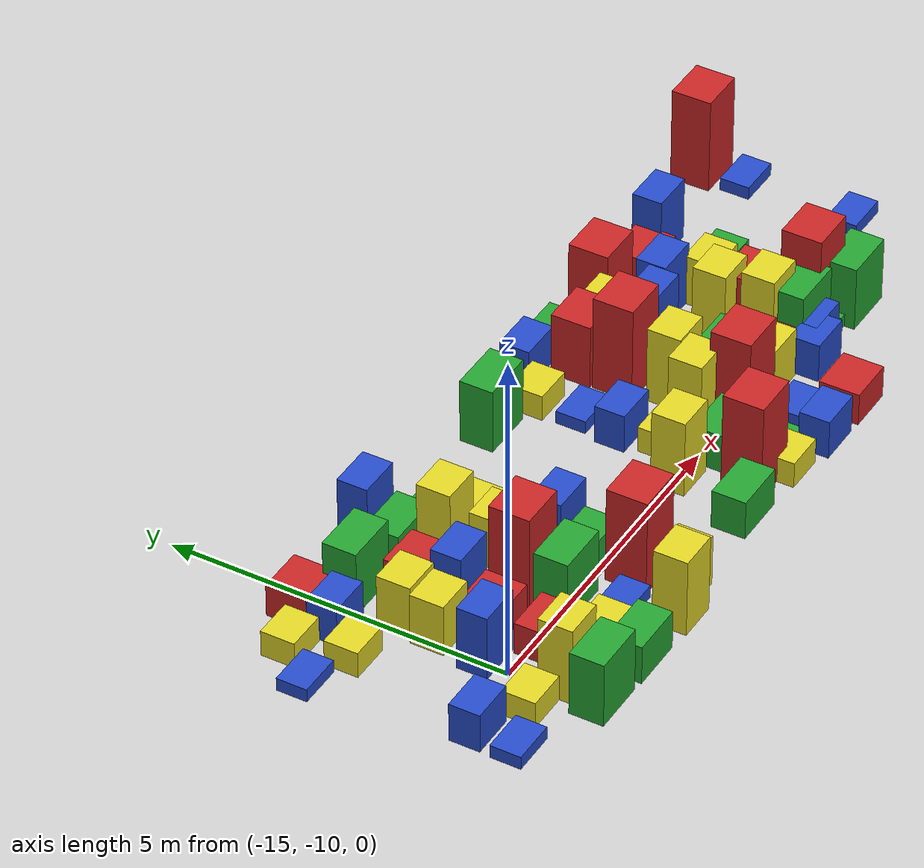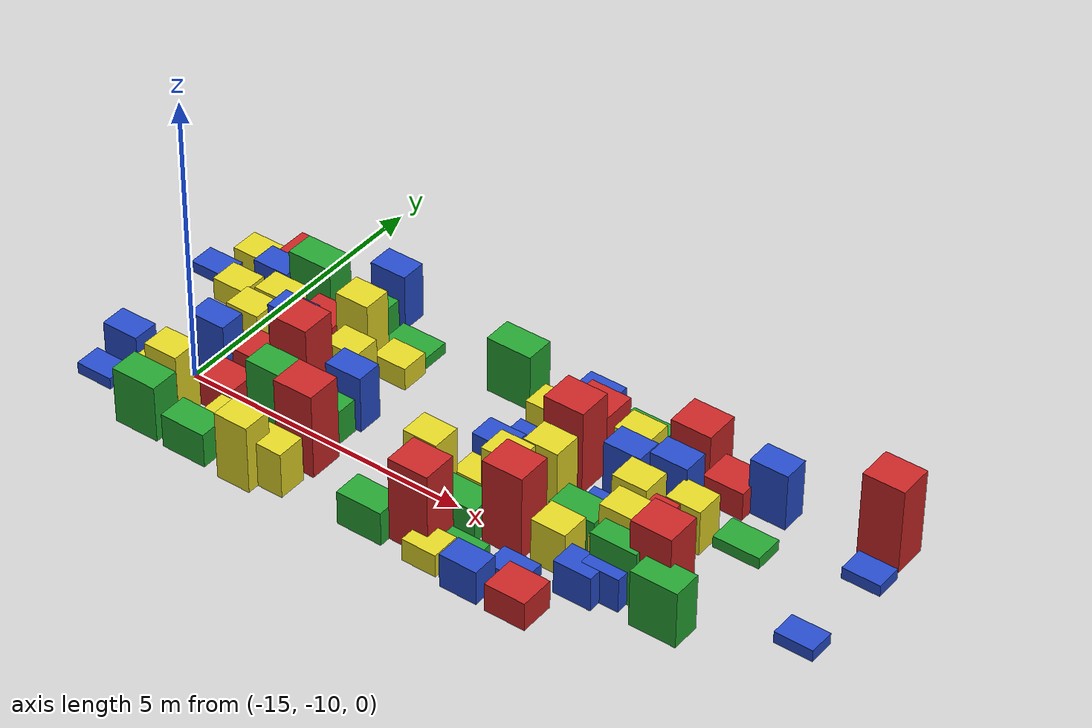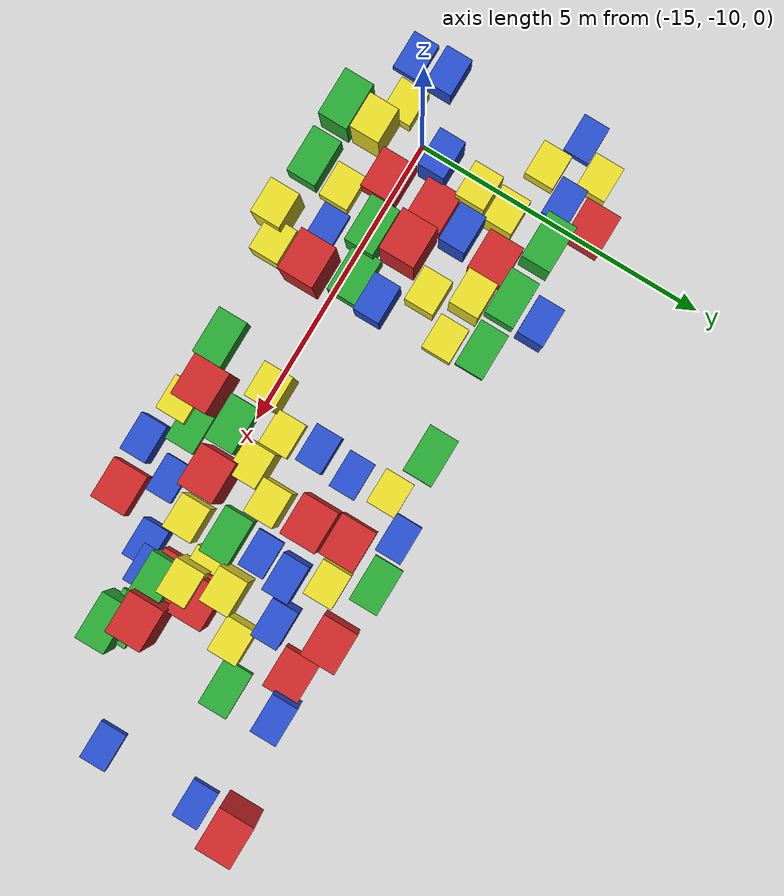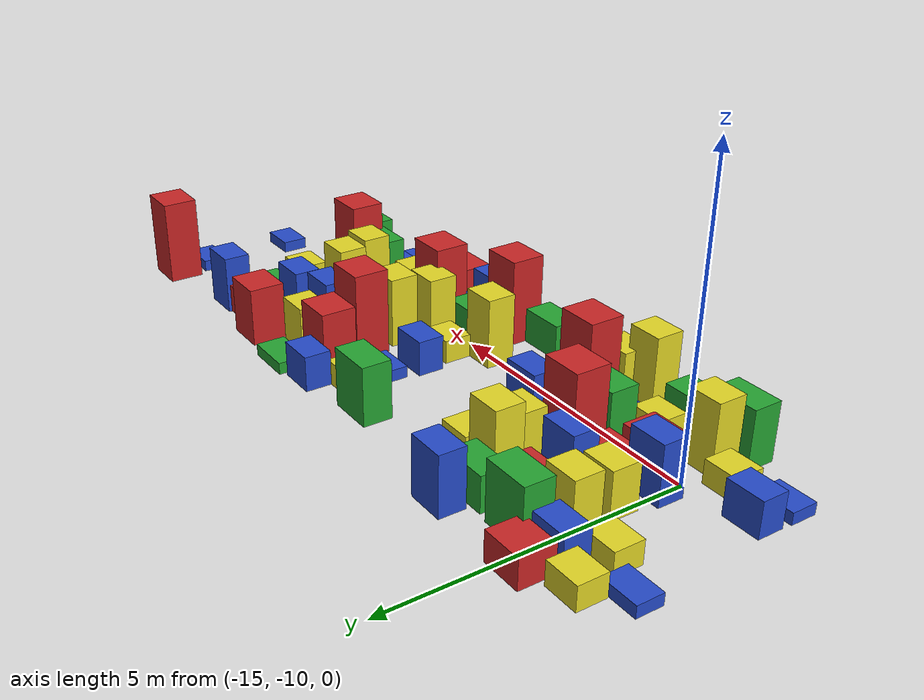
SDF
<sdf version="1.6">
 <world name="default">
  <model name="baggage_A_0.5_clone_0">
   <pose>-8.03594 -11.2169 0.25049 0 -0 0</pose>
   <static>1</static>
   <link name="baggage_A_0.5::link">
    <collision name="collision"><geometry><box><size>0.7 0.6 0.5</size></box></geometry></collision>
    <visual name="visual">
     <geometry><box><size>0.7 0.6 0.5</size></box></geometry>
     <material>
      <script><uri>file://media/materials/scripts/gazebo.material</uri><name>Gazebo/Red</name></script>
     </material>
    </visual>
   </link>
  </model>
  <model name="baggage_A_0.5_clone_1">
   <pose>-14.2316 -9.33114 0.25012 0 -0 0</pose>
   <static>1</static>
   <link name="baggage_A_0.5::link">
    <collision name="collision"><geometry><box><size>0.7 0.6 0.5</size></box></geometry></collision>
    <visual name="visual">
     <geometry><box><size>0.7 0.6 0.5</size></box></geometry>
     <material>
      <script><uri>file://media/materials/scripts/gazebo.material</uri><name>Gazebo/Red</name></script>
     </material>
    </visual>
   </link>
  </model>
  <model name="baggage_A_0.5_clone_2">
   <pose>-15.2039 -7.06577 0.250351 0 -0 0</pose>
   <static>1</static>
   <link name="baggage_A_0.5::link">
    <collision name="collision"><geometry><box><size>0.7 0.6 0.5</size></box></geometry></collision>
    <visual name="visual">
     <geometry><box><size>0.7 0.6 0.5</size></box></geometry>
     <material>
      <script><uri>file://media/materials/scripts/gazebo.material</uri><name>Gazebo/Red</name></script>
     </material>
    </visual>
   </link>
  </model>
  <model name="baggage_A_0.5_clone_3">
   <pose>-14.2574 -10.1602 0.249714 0 -0 0</pose>
   <static>1</static>
   <link name="baggage_A_0.5::link">
    <collision name="collision"><geometry><box><size>0.7 0.6 0.5</size></box></geometry></collision>
    <visual name="visual">
     <geometry><box><size>0.7 0.6 0.5</size></box></geometry>
     <material>
      <script><uri>file://media/materials/scripts/gazebo.material</uri><name>Gazebo/Red</name></script>
     </material>
    </visual>
   </link>
  </model>
  <model name="baggage_A_0.5_clone_4">
   <pose>-6.92975 -7.46539 0.249929 0 -0 0</pose>
   <static>1</static>
   <link name="baggage_A_0.5::link">
    <collision name="collision"><geometry><box><size>0.7 0.6 0.5</size></box></geometry></collision>
    <visual name="visual">
     <geometry><box><size>0.7 0.6 0.5</size></box></geometry>
     <material>
      <script><uri>file://media/materials/scripts/gazebo.material</uri><name>Gazebo/Red</name></script>
     </material>
    </visual>
   </link>
  </model>
  <model name="baggage_A_0.5_clone_8">
   <pose>-14.0214 -8.09758 0.249739 0 -0 0</pose>
   <static>1</static>
   <link name="baggage_A_0.5::link">
    <collision name="collision"><geometry><box><size>0.7 0.6 0.5</size></box></geometry></collision>
    <visual name="visual">
     <geometry><box><size>0.7 0.6 0.5</size></box></geometry>
     <material>
      <script><uri>file://media/materials/scripts/gazebo.material</uri><name>Gazebo/Red</name></script>
     </material>
    </visual>
   </link>
  </model>
  <model name="baggage_A_0.5_clone_14">
   <pose>-7.25875 -9.4415 0.249945 0 -0 0</pose>
   <static>1</static>
   <link name="baggage_A_0.5::link">
    <collision name="collision"><geometry><box><size>0.7 0.6 0.5</size></box></geometry></collision>
    <visual name="visual">
     <geometry><box><size>0.7 0.6 0.5</size></box></geometry>
     <material>
      <script><uri>file://media/materials/scripts/gazebo.material</uri><name>Gazebo/Red</name></script>
     </material>
    </visual>
   </link>
  </model>
  <model name="baggage_A_0.5_clone_18">
   <pose>-7.2545 -9.83119 0.249666 0 -0 0</pose>
   <static>1</static>
   <link name="baggage_A_0.5::link">
    <collision name="collision"><geometry><box><size>0.7 0.6 0.5</size></box></geometry></collision>
    <visual name="visual">
     <geometry><box><size>0.7 0.6 0.5</size></box></geometry>
     <material>
      <script><uri>file://media/materials/scripts/gazebo.material</uri><name>Gazebo/Red</name></script>
     </material>
    </visual>
   </link>
  </model>
  <model name="baggage_A_1.0_clone_2">
   <pose>-9.12711 -7.76509 0.499893 0 -0 0</pose>
   <static>1</static>
   <link name="baggage_A_1.0::link">
    <collision name="collision"><geometry><box><size>0.7 0.6 1</size></box></geometry></collision>
    <visual name="visual">
     <geometry><box><size>0.7 0.6 1</size></box></geometry>
     <material>
      <script><uri>file://media/materials/scripts/gazebo.material</uri><name>Gazebo/Red</name></script>
     </material>
    </visual>
   </link>
  </model>
  <model name="baggage_A_1.0_clone_13">
   <pose>-7.19822 -9.26942 0.499913 0 -0 0</pose>
   <static>1</static>
   <link name="baggage_A_1.0::link">
    <collision name="collision"><geometry><box><size>0.7 0.6 1</size></box></geometry></collision>
    <visual name="visual">
     <geometry><box><size>0.7 0.6 1</size></box></geometry>
     <material>
      <script><uri>file://media/materials/scripts/gazebo.material</uri><name>Gazebo/Red</name></script>
     </material>
    </visual>
   </link>
  </model>
  <model name="baggage_A_1.0_clone_19">
   <pose>-7.68545 -7.21501 0.50038 0 -0 0</pose>
   <static>1</static>
   <link name="baggage_A_1.0::link">
    <collision name="collision"><geometry><box><size>0.7 0.6 1</size></box></geometry></collision>
    <visual name="visual">
     <geometry><box><size>0.7 0.6 1</size></box></geometry>
     <material>
      <script><uri>file://media/materials/scripts/gazebo.material</uri><name>Gazebo/Red</name></script>
     </material>
    </visual>
   </link>
  </model>
  <model name="baggage_A_1.5_clone_0">
   <pose>-10.0364 -10.8358 0.750316 0 -0 0</pose>
   <static>1</static>
   <link name="baggage_A_1.5::link">
    <collision name="collision"><geometry><box><size>0.7 0.6 1.5</size></box></geometry></collision>
    <visual name="visual">
     <geometry><box><size>0.7 0.6 1.5</size></box></geometry>
     <material>
      <script><uri>file://media/materials/scripts/gazebo.material</uri><name>Gazebo/Red</name></script>
     </material>
    </visual>
   </link>
  </model>
  <model name="baggage_A_1.5_clone_1">
   <pose>-9.10882 -8.39068 0.74973 0 -0 0</pose>
   <static>1</static>
   <link name="baggage_A_1.5::link">
    <collision name="collision"><geometry><box><size>0.7 0.6 1.5</size></box></geometry></collision>
    <visual name="visual">
     <geometry><box><size>0.7 0.6 1.5</size></box></geometry>
     <material>
      <script><uri>file://media/materials/scripts/gazebo.material</uri><name>Gazebo/Red</name></script>
     </material>
    </visual>
   </link>
  </model>
  <model name="baggage_A_1.5_clone_5">
   <pose>-8.95148 -10.0626 0.75034 0 -0 0</pose>
   <static>1</static>
   <link name="baggage_A_1.5::link">
    <collision name="collision"><geometry><box><size>0.7 0.6 1.5</size></box></geometry></collision>
    <visual name="visual">
     <geometry><box><size>0.7 0.6 1.5</size></box></geometry>
     <material>
      <script><uri>file://media/materials/scripts/gazebo.material</uri><name>Gazebo/Red</name></script>
     </material>
    </visual>
   </link>
  </model>
  <model name="baggage_A_1.5_clone_6">
   <pose>-4.53239 -7.0569 0.749911 0 -0 0</pose>
   <static>1</static>
   <link name="baggage_A_1.5::link">
    <collision name="collision"><geometry><box><size>0.7 0.6 1.5</size></box></geometry></collision>
    <visual name="visual">
     <geometry><box><size>0.7 0.6 1.5</size></box></geometry>
     <material>
      <script><uri>file://media/materials/scripts/gazebo.material</uri><name>Gazebo/Red</name></script>
     </material>
    </visual>
   </link>
  </model>
  <model name="baggage_A_1.5_clone_10">
   <pose>-6.54813 -9.8382 0.750412 0 -0 0</pose>
   <static>1</static>
   <link name="baggage_A_1.5::link">
    <collision name="collision"><geometry><box><size>0.7 0.6 1.5</size></box></geometry></collision>
    <visual name="visual">
     <geometry><box><size>0.7 0.6 1.5</size></box></geometry>
     <material>
      <script><uri>file://media/materials/scripts/gazebo.material</uri><name>Gazebo/Red</name></script>
     </material>
    </visual>
   </link>
  </model>
  <model name="baggage_A_1.5_clone_14">
   <pose>-13.4679 -9.32583 0.749722 0 -0 0</pose>
   <static>1</static>
   <link name="baggage_A_1.5::link">
    <collision name="collision"><geometry><box><size>0.7 0.6 1.5</size></box></geometry></collision>
    <visual name="visual">
     <geometry><box><size>0.7 0.6 1.5</size></box></geometry>
     <material>
      <script><uri>file://media/materials/scripts/gazebo.material</uri><name>Gazebo/Red</name></script>
     </material>
    </visual>
   </link>
  </model>
  <model name="baggage_A_1.5_clone_18">
   <pose>-12.4395 -10.4565 0.750143 0 -0 0</pose>
   <static>1</static>
   <link name="baggage_A_1.5::link">
    <collision name="collision"><geometry><box><size>0.7 0.6 1.5</size></box></geometry></collision>
    <visual name="visual">
     <geometry><box><size>0.7 0.6 1.5</size></box></geometry>
     <material>
      <script><uri>file://media/materials/scripts/gazebo.material</uri><name>Gazebo/Red</name></script>
     </material>
    </visual>
   </link>
  </model>
  <model name="baggage_B_0.2_clone_4">
   <pose>-16.385 -7.85399 0.10017 0 -0 0</pose>
   <static>1</static>
   <link name="baggage_B_0.2::link">
    <collision name="collision"><geometry><box><size>0.65 0.45 0.2</size></box></geometry></collision>
    <visual name="visual">
     <geometry><box><size>0.65 0.45 0.2</size></box></geometry>
     <material>
      <script><uri>file://media/materials/scripts/gazebo.material</uri><name>Gazebo/Blue</name></script>
     </material>
    </visual>
   </link>
  </model>
  <model name="baggage_B_0.2_clone_5">
   <pose>-13.1245 -10.6044 0.099516 0 -0 0</pose>
   <static>1</static>
   <link name="baggage_B_0.2::link">
    <collision name="collision"><geometry><box><size>0.65 0.45 0.2</size></box></geometry></collision>
    <visual name="visual">
     <geometry><box><size>0.65 0.45 0.2</size></box></geometry>
     <material>
      <script><uri>file://media/materials/scripts/gazebo.material</uri><name>Gazebo/Blue</name></script>
     </material>
    </visual>
   </link>
  </model>
  <model name="baggage_B_0.2_clone_8">
   <pose>-8.25675 -8.84063 0.100339 0 -0 0</pose>
   <static>1</static>
   <link name="baggage_B_0.2::link">
    <collision name="collision"><geometry><box><size>0.65 0.45 0.2</size></box></geometry></collision>
    <visual name="visual">
     <geometry><box><size>0.65 0.45 0.2</size></box></geometry>
     <material>
      <script><uri>file://media/materials/scripts/gazebo.material</uri><name>Gazebo/Blue</name></script>
     </material>
    </visual>
   </link>
  </model>
  <model name="baggage_B_0.2_clone_9">
   <pose>-4.44581 -7.70343 0.099619 0 -0 0</pose>
   <static>1</static>
   <link name="baggage_B_0.2::link">
    <collision name="collision"><geometry><box><size>0.65 0.45 0.2</size></box></geometry></collision>
    <visual name="visual">
     <geometry><box><size>0.65 0.45 0.2</size></box></geometry>
     <material>
      <script><uri>file://media/materials/scripts/gazebo.material</uri><name>Gazebo/Blue</name></script>
     </material>
    </visual>
   </link>
  </model>
  <model name="baggage_B_0.2_clone_10">
   <pose>-4.46931 -9.38562 0.100011 0 -0 0</pose>
   <static>1</static>
   <link name="baggage_B_0.2::link">
    <collision name="collision"><geometry><box><size>0.65 0.45 0.2</size></box></geometry></collision>
    <visual name="visual">
     <geometry><box><size>0.65 0.45 0.2</size></box></geometry>
     <material>
      <script><uri>file://media/materials/scripts/gazebo.material</uri><name>Gazebo/Blue</name></script>
     </material>
    </visual>
   </link>
  </model>
  <model name="baggage_B_0.2_clone_15">
   <pose>-8.51455 -10.6685 0.099721 0 -0 0</pose>
   <static>1</static>
   <link name="baggage_B_0.2::link">
    <collision name="collision"><geometry><box><size>0.65 0.45 0.2</size></box></geometry></collision>
    <visual name="visual">
     <geometry><box><size>0.65 0.45 0.2</size></box></geometry>
     <material>
      <script><uri>file://media/materials/scripts/gazebo.material</uri><name>Gazebo/Blue</name></script>
     </material>
    </visual>
   </link>
  </model>
  <model name="baggage_B_0.2_clone_17">
   <pose>-16.1263 -10.7977 0.100166 0 -0 0</pose>
   <static>1</static>
   <link name="baggage_B_0.2::link">
    <collision name="collision"><geometry><box><size>0.65 0.45 0.2</size></box></geometry></collision>
    <visual name="visual">
     <geometry><box><size>0.65 0.45 0.2</size></box></geometry>
     <material>
      <script><uri>file://media/materials/scripts/gazebo.material</uri><name>Gazebo/Blue</name></script>
     </material>
    </visual>
   </link>
  </model>
  <model name="baggage_B_0.2_clone_18">
   <pose>-10.0243 -8.26472 0.100334 0 -0 0</pose>
   <static>1</static>
   <link name="baggage_B_0.2::link">
    <collision name="collision"><geometry><box><size>0.65 0.45 0.2</size></box></geometry></collision>
    <visual name="visual">
     <geometry><box><size>0.65 0.45 0.2</size></box></geometry>
     <material>
      <script><uri>file://media/materials/scripts/gazebo.material</uri><name>Gazebo/Blue</name></script>
     </material>
    </visual>
   </link>
  </model>
  <model name="baggage_B_0.6_clone_0">
   <pose>-7.19285 -10.1975 0.300419 0 -0 0</pose>
   <static>1</static>
   <link name="baggage_B_0.6::link">
    <collision name="collision"><geometry><box><size>0.65 0.45 0.6</size></box></geometry></collision>
    <visual name="visual">
     <geometry><box><size>0.65 0.45 0.6</size></box></geometry>
     <material>
      <script><uri>file://media/materials/scripts/gazebo.material</uri><name>Gazebo/Blue</name></script>
     </material>
    </visual>
   </link>
  </model>
  <model name="baggage_B_0.6_clone_3">
   <pose>-15.2942 -7.63311 0.299589 0 -0 0</pose>
   <static>1</static>
   <link name="baggage_B_0.6::link">
    <collision name="collision"><geometry><box><size>0.65 0.45 0.6</size></box></geometry></collision>
    <visual name="visual">
     <geometry><box><size>0.65 0.45 0.6</size></box></geometry>
     <material>
      <script><uri>file://media/materials/scripts/gazebo.material</uri><name>Gazebo/Blue</name></script>
     </material>
    </visual>
   </link>
  </model>
  <model name="baggage_B_0.6_clone_4">
   <pose>-16.1066 -10.1982 0.299607 0 -0 0</pose>
   <static>1</static>
   <link name="baggage_B_0.6::link">
    <collision name="collision"><geometry><box><size>0.65 0.45 0.6</size></box></geometry></collision>
    <visual name="visual">
     <geometry><box><size>0.65 0.45 0.6</size></box></geometry>
     <material>
      <script><uri>file://media/materials/scripts/gazebo.material</uri><name>Gazebo/Blue</name></script>
     </material>
    </visual>
   </link>
  </model>
  <model name="baggage_B_0.6_clone_5">
   <pose>-7.51872 -10.4098 0.300264 0 -0 0</pose>
   <static>1</static>
   <link name="baggage_B_0.6::link">
    <collision name="collision"><geometry><box><size>0.65 0.45 0.6</size></box></geometry></collision>
    <visual name="visual">
     <geometry><box><size>0.65 0.45 0.6</size></box></geometry>
     <material>
      <script><uri>file://media/materials/scripts/gazebo.material</uri><name>Gazebo/Blue</name></script>
     </material>
    </visual>
   </link>
  </model>
  <model name="baggage_B_0.6_clone_6">
   <pose>-8.87214 -11.2737 0.299875 0 -0 0</pose>
   <static>1</static>
   <link name="baggage_B_0.6::link">
    <collision name="collision"><geometry><box><size>0.65 0.45 0.6</size></box></geometry></collision>
    <visual name="visual">
     <geometry><box><size>0.65 0.45 0.6</size></box></geometry>
     <material>
      <script><uri>file://media/materials/scripts/gazebo.material</uri><name>Gazebo/Blue</name></script>
     </material>
    </visual>
   </link>
  </model>
  <model name="baggage_B_0.6_clone_10">
   <pose>-9.56491 -7.13969 0.299655 0 -0 0</pose>
   <static>1</static>
   <link name="baggage_B_0.6::link">
    <collision name="collision"><geometry><box><size>0.65 0.45 0.6</size></box></geometry></collision>
    <visual name="visual">
     <geometry><box><size>0.65 0.45 0.6</size></box></geometry>
     <material>
      <script><uri>file://media/materials/scripts/gazebo.material</uri><name>Gazebo/Blue</name></script>
     </material>
    </visual>
   </link>
  </model>
  <model name="baggage_B_0.6_clone_15">
   <pose>-10.1082 -8.89414 0.300319 0 -0 0</pose>
   <static>1</static>
   <link name="baggage_B_0.6::link">
    <collision name="collision"><geometry><box><size>0.65 0.45 0.6</size></box></geometry></collision>
    <visual name="visual">
     <geometry><box><size>0.65 0.45 0.6</size></box></geometry>
     <material>
      <script><uri>file://media/materials/scripts/gazebo.material</uri><name>Gazebo/Blue</name></script>
     </material>
    </visual>
   </link>
  </model>
  <model name="baggage_B_1.0_clone_3">
   <pose>-12.5094 -9.30404 0.499578 0 -0 0</pose>
   <static>1</static>
   <link name="baggage_B_1.0::link">
    <collision name="collision"><geometry><box><size>0.65 0.45 1</size></box></geometry></collision>
    <visual name="visual">
     <geometry><box><size>0.65 0.45 1</size></box></geometry>
     <material>
      <script><uri>file://media/materials/scripts/gazebo.material</uri><name>Gazebo/Blue</name></script>
     </material>
    </visual>
   </link>
  </model>
  <model name="baggage_B_1.0_clone_5">
   <pose>-14.8892 -9.59574 0.500009 0 -0 0</pose>
   <static>1</static>
   <link name="baggage_B_1.0::link">
    <collision name="collision"><geometry><box><size>0.65 0.45 1</size></box></geometry></collision>
    <visual name="visual">
     <geometry><box><size>0.65 0.45 1</size></box></geometry>
     <material>
      <script><uri>file://media/materials/scripts/gazebo.material</uri><name>Gazebo/Blue</name></script>
     </material>
    </visual>
   </link>
  </model>
  <model name="baggage_B_1.0_clone_8">
   <pose>-13.4885 -7.00206 0.499638 0 -0 0</pose>
   <static>1</static>
   <link name="baggage_B_1.0::link">
    <collision name="collision"><geometry><box><size>0.65 0.45 1</size></box></geometry></collision>
    <visual name="visual">
     <geometry><box><size>0.65 0.45 1</size></box></geometry>
     <material>
      <script><uri>file://media/materials/scripts/gazebo.material</uri><name>Gazebo/Blue</name></script>
     </material>
    </visual>
   </link>
  </model>
  <model name="baggage_B_1.0_clone_10">
   <pose>-14.0823 -8.74476 0.500175 0 -0 0</pose>
   <static>1</static>
   <link name="baggage_B_1.0::link">
    <collision name="collision"><geometry><box><size>0.65 0.45 1</size></box></geometry></collision>
    <visual name="visual">
     <geometry><box><size>0.65 0.45 1</size></box></geometry>
     <material>
      <script><uri>file://media/materials/scripts/gazebo.material</uri><name>Gazebo/Blue</name></script>
     </material>
    </visual>
   </link>
  </model>
  <model name="baggage_B_1.0_clone_11">
   <pose>-8.19238 -8.28807 0.500476 0 -0 0</pose>
   <static>1</static>
   <link name="baggage_B_1.0::link">
    <collision name="collision"><geometry><box><size>0.65 0.45 1</size></box></geometry></collision>
    <visual name="visual">
     <geometry><box><size>0.65 0.45 1</size></box></geometry>
     <material>
      <script><uri>file://media/materials/scripts/gazebo.material</uri><name>Gazebo/Blue</name></script>
     </material>
    </visual>
   </link>
  </model>
  <model name="baggage_B_1.0_clone_14">
   <pose>-6.29775 -7.3349 0.500395 0 -0 0</pose>
   <static>1</static>
   <link name="baggage_B_1.0::link">
    <collision name="collision"><geometry><box><size>0.65 0.45 1</size></box></geometry></collision>
    <visual name="visual">
     <geometry><box><size>0.65 0.45 1</size></box></geometry>
     <material>
      <script><uri>file://media/materials/scripts/gazebo.material</uri><name>Gazebo/Blue</name></script>
     </material>
    </visual>
   </link>
  </model>
  <model name="baggage_B_1.0_clone_19">
   <pose>-7.52481 -8.07438 0.499705 0 -0 0</pose>
   <static>1</static>
   <link name="baggage_B_1.0::link">
    <collision name="collision"><geometry><box><size>0.65 0.45 1</size></box></geometry></collision>
    <visual name="visual">
     <geometry><box><size>0.65 0.45 1</size></box></geometry>
     <material>
      <script><uri>file://media/materials/scripts/gazebo.material</uri><name>Gazebo/Blue</name></script>
     </material>
    </visual>
   </link>
  </model>
  <model name="baggage_C_0.4_clone_4">
   <pose>-10.0937 -7.6099 0.199909 0 -0 0</pose>
   <static>1</static>
   <link name="baggage_C_0.4::link">
    <collision name="collision"><geometry><box><size>0.6 0.5 0.4</size></box></geometry></collision>
    <visual name="visual">
     <geometry><box><size>0.6 0.5 0.4</size></box></geometry>
     <material>
      <script><uri>file://media/materials/scripts/gazebo.material</uri><name>Gazebo/Yellow</name></script>
     </material>
    </visual>
   </link>
  </model>
  <model name="baggage_C_0.4_clone_5">
   <pose>-15.6965 -8.14517 0.200332 0 -0 0</pose>
   <static>1</static>
   <link name="baggage_C_0.4::link">
    <collision name="collision"><geometry><box><size>0.6 0.5 0.4</size></box></geometry></collision>
    <visual name="visual">
     <geometry><box><size>0.6 0.5 0.4</size></box></geometry>
     <material>
      <script><uri>file://media/materials/scripts/gazebo.material</uri><name>Gazebo/Yellow</name></script>
     </material>
    </visual>
   </link>
  </model>
  <model name="baggage_C_0.4_clone_6">
   <pose>-7.5971 -9.48187 0.20021 0 -0 0</pose>
   <static>1</static>
   <link name="baggage_C_0.4::link">
    <collision name="collision"><geometry><box><size>0.6 0.5 0.4</size></box></geometry></collision>
    <visual name="visual">
     <geometry><box><size>0.6 0.5 0.4</size></box></geometry>
     <material>
      <script><uri>file://media/materials/scripts/gazebo.material</uri><name>Gazebo/Yellow</name></script>
     </material>
    </visual>
   </link>
  </model>
  <model name="baggage_C_0.4_clone_7">
   <pose>-15.9405 -7.36169 0.200387 0 -0 0</pose>
   <static>1</static>
   <link name="baggage_C_0.4::link">
    <collision name="collision"><geometry><box><size>0.6 0.5 0.4</size></box></geometry></collision>
    <visual name="visual">
     <geometry><box><size>0.6 0.5 0.4</size></box></geometry>
     <material>
      <script><uri>file://media/materials/scripts/gazebo.material</uri><name>Gazebo/Yellow</name></script>
     </material>
    </visual>
   </link>
  </model>
  <model name="baggage_C_0.4_clone_8">
   <pose>-12.569 -8.12015 0.19975 0 -0 0</pose>
   <static>1</static>
   <link name="baggage_C_0.4::link">
    <collision name="collision"><geometry><box><size>0.6 0.5 0.4</size></box></geometry></collision>
    <visual name="visual">
     <geometry><box><size>0.6 0.5 0.4</size></box></geometry>
     <material>
      <script><uri>file://media/materials/scripts/gazebo.material</uri><name>Gazebo/Yellow</name></script>
     </material>
    </visual>
   </link>
  </model>
  <model name="baggage_C_0.4_clone_9">
   <pose>-13.7716 -10.6987 0.199509 0 -0 0</pose>
   <static>1</static>
   <link name="baggage_C_0.4::link">
    <collision name="collision"><geometry><box><size>0.6 0.5 0.4</size></box></geometry></collision>
    <visual name="visual">
     <geometry><box><size>0.6 0.5 0.4</size></box></geometry>
     <material>
      <script><uri>file://media/materials/scripts/gazebo.material</uri><name>Gazebo/Yellow</name></script>
     </material>
    </visual>
   </link>
  </model>
  <model name="baggage_C_0.4_clone_14">
   <pose>-15.394 -10.5439 0.200396 0 -0 0</pose>
   <static>1</static>
   <link name="baggage_C_0.4::link">
    <collision name="collision"><geometry><box><size>0.6 0.5 0.4</size></box></geometry></collision>
    <visual name="visual">
     <geometry><box><size>0.6 0.5 0.4</size></box></geometry>
     <material>
      <script><uri>file://media/materials/scripts/gazebo.material</uri><name>Gazebo/Yellow</name></script>
     </material>
    </visual>
   </link>
  </model>
  <model name="baggage_C_0.4_clone_15">
   <pose>-10.0151 -9.50486 0.199785 0 -0 0</pose>
   <static>1</static>
   <link name="baggage_C_0.4::link">
    <collision name="collision"><geometry><box><size>0.6 0.5 0.4</size></box></geometry></collision>
    <visual name="visual">
     <geometry><box><size>0.6 0.5 0.4</size></box></geometry>
     <material>
      <script><uri>file://media/materials/scripts/gazebo.material</uri><name>Gazebo/Yellow</name></script>
     </material>
    </visual>
   </link>
  </model>
  <model name="baggage_C_0.4_clone_19">
   <pose>-9.6551 -11.1373 0.200331 0 -0 0</pose>
   <static>1</static>
   <link name="baggage_C_0.4::link">
    <collision name="collision"><geometry><box><size>0.6 0.5 0.4</size></box></geometry></collision>
    <visual name="visual">
     <geometry><box><size>0.6 0.5 0.4</size></box></geometry>
     <material>
      <script><uri>file://media/materials/scripts/gazebo.material</uri><name>Gazebo/Yellow</name></script>
     </material>
    </visual>
   </link>
  </model>
  <model name="baggage_C_0.8_clone_0">
   <pose>-14.7985 -8.86686 0.399898 0 -0 0</pose>
   <static>1</static>
   <link name="baggage_C_0.8::link">
    <collision name="collision"><geometry><box><size>0.6 0.5 0.8</size></box></geometry></collision>
    <visual name="visual">
     <geometry><box><size>0.6 0.5 0.8</size></box></geometry>
     <material>
      <script><uri>file://media/materials/scripts/gazebo.material</uri><name>Gazebo/Yellow</name></script>
     </material>
    </visual>
   </link>
  </model>
  <model name="baggage_C_0.8_clone_1">
   <pose>-8.18214 -10.0546 0.399641 0 -0 0</pose>
   <static>1</static>
   <link name="baggage_C_0.8::link">
    <collision name="collision"><geometry><box><size>0.6 0.5 0.8</size></box></geometry></collision>
    <visual name="visual">
     <geometry><box><size>0.6 0.5 0.8</size></box></geometry>
     <material>
      <script><uri>file://media/materials/scripts/gazebo.material</uri><name>Gazebo/Yellow</name></script>
     </material>
    </visual>
   </link>
  </model>
  <model name="baggage_C_0.8_clone_4">
   <pose>-8.42469 -7.7081 0.399851 0 -0 0</pose>
   <static>1</static>
   <link name="baggage_C_0.8::link">
    <collision name="collision"><geometry><box><size>0.6 0.5 0.8</size></box></geometry></collision>
    <visual name="visual">
     <geometry><box><size>0.6 0.5 0.8</size></box></geometry>
     <material>
      <script><uri>file://media/materials/scripts/gazebo.material</uri><name>Gazebo/Yellow</name></script>
     </material>
    </visual>
   </link>
  </model>
  <model name="baggage_C_0.8_clone_6">
   <pose>-13.0299 -8.7037 0.400282 0 -0 0</pose>
   <static>1</static>
   <link name="baggage_C_0.8::link">
    <collision name="collision"><geometry><box><size>0.6 0.5 0.8</size></box></geometry></collision>
    <visual name="visual">
     <geometry><box><size>0.6 0.5 0.8</size></box></geometry>
     <material>
      <script><uri>file://media/materials/scripts/gazebo.material</uri><name>Gazebo/Yellow</name></script>
     </material>
    </visual>
   </link>
  </model>
  <model name="baggage_C_0.8_clone_9">
   <pose>-14.6985 -8.32008 0.400138 0 -0 0</pose>
   <static>1</static>
   <link name="baggage_C_0.8::link">
    <collision name="collision"><geometry><box><size>0.6 0.5 0.8</size></box></geometry></collision>
    <visual name="visual">
     <geometry><box><size>0.6 0.5 0.8</size></box></geometry>
     <material>
      <script><uri>file://media/materials/scripts/gazebo.material</uri><name>Gazebo/Yellow</name></script>
     </material>
    </visual>
   </link>
  </model>
  <model name="baggage_C_0.8_clone_17">
   <pose>-12.4757 -11.1307 0.400316 0 -0 0</pose>
   <static>1</static>
   <link name="baggage_C_0.8::link">
    <collision name="collision"><geometry><box><size>0.6 0.5 0.8</size></box></geometry></collision>
    <visual name="visual">
     <geometry><box><size>0.6 0.5 0.8</size></box></geometry>
     <material>
      <script><uri>file://media/materials/scripts/gazebo.material</uri><name>Gazebo/Yellow</name></script>
     </material>
    </visual>
   </link>
  </model>
  <model name="baggage_C_0.8_clone_19">
   <pose>-6.95007 -8.50455 0.399568 0 -0 0</pose>
   <static>1</static>
   <link name="baggage_C_0.8::link">
    <collision name="collision"><geometry><box><size>0.6 0.5 0.8</size></box></geometry></collision>
    <visual name="visual">
     <geometry><box><size>0.6 0.5 0.8</size></box></geometry>
     <material>
      <script><uri>file://media/materials/scripts/gazebo.material</uri><name>Gazebo/Yellow</name></script>
     </material>
    </visual>
   </link>
  </model>
  <model name="baggage_C_1.2_clone_0">
   <pose>-12.9263 -11.3324 0.600139 0 -0 0</pose>
   <static>1</static>
   <link name="baggage_C_1.2::link">
    <collision name="collision"><geometry><box><size>0.6 0.5 1.2</size></box></geometry></collision>
    <visual name="visual">
     <geometry><box><size>0.6 0.5 1.2</size></box></geometry>
     <material>
      <script><uri>file://media/materials/scripts/gazebo.material</uri><name>Gazebo/Yellow</name></script>
     </material>
    </visual>
   </link>
  </model>
  <model name="baggage_C_1.2_clone_3">
   <pose>-13.2994 -8.08452 0.600415 0 -0 0</pose>
   <static>1</static>
   <link name="baggage_C_1.2::link">
    <collision name="collision"><geometry><box><size>0.6 0.5 1.2</size></box></geometry></collision>
    <visual name="visual">
     <geometry><box><size>0.6 0.5 1.2</size></box></geometry>
     <material>
      <script><uri>file://media/materials/scripts/gazebo.material</uri><name>Gazebo/Yellow</name></script>
     </material>
    </visual>
   </link>
  </model>
  <model name="baggage_C_1.2_clone_6">
   <pose>-9.03343 -9.08986 0.600497 0 -0 0</pose>
   <static>1</static>
   <link name="baggage_C_1.2::link">
    <collision name="collision"><geometry><box><size>0.6 0.5 1.2</size></box></geometry></collision>
    <visual name="visual">
     <geometry><box><size>0.6 0.5 1.2</size></box></geometry>
     <material>
      <script><uri>file://media/materials/scripts/gazebo.material</uri><name>Gazebo/Yellow</name></script>
     </material>
    </visual>
   </link>
  </model>
  <model name="baggage_C_1.2_clone_7">
   <pose>-14.7886 -10.7235 0.599939 0 -0 0</pose>
   <static>1</static>
   <link name="baggage_C_1.2::link">
    <collision name="collision"><geometry><box><size>0.6 0.5 1.2</size></box></geometry></collision>
    <visual name="visual">
     <geometry><box><size>0.6 0.5 1.2</size></box></geometry>
     <material>
      <script><uri>file://media/materials/scripts/gazebo.material</uri><name>Gazebo/Yellow</name></script>
     </material>
    </visual>
   </link>
  </model>
  <model name="baggage_C_1.2_clone_8">
   <pose>-7.56804 -8.96864 0.600004 0 -0 0</pose>
   <static>1</static>
   <link name="baggage_C_1.2::link">
    <collision name="collision"><geometry><box><size>0.6 0.5 1.2</size></box></geometry></collision>
    <visual name="visual">
     <geometry><box><size>0.6 0.5 1.2</size></box></geometry>
     <material>
      <script><uri>file://media/materials/scripts/gazebo.material</uri><name>Gazebo/Yellow</name></script>
     </material>
    </visual>
   </link>
  </model>
  <model name="baggage_C_1.2_clone_10">
   <pose>-9.4029 -9.61069 0.60012 0 -0 0</pose>
   <static>1</static>
   <link name="baggage_C_1.2::link">
    <collision name="collision"><geometry><box><size>0.6 0.5 1.2</size></box></geometry></collision>
    <visual name="visual">
     <geometry><box><size>0.6 0.5 1.2</size></box></geometry>
     <material>
      <script><uri>file://media/materials/scripts/gazebo.material</uri><name>Gazebo/Yellow</name></script>
     </material>
    </visual>
   </link>
  </model>
  <model name="baggage_C_1.2_clone_11">
   <pose>-7.34296 -9.58337 0.599802 0 -0 0</pose>
   <static>1</static>
   <link name="baggage_C_1.2::link">
    <collision name="collision"><geometry><box><size>0.6 0.5 1.2</size></box></geometry></collision>
    <visual name="visual">
     <geometry><box><size>0.6 0.5 1.2</size></box></geometry>
     <material>
      <script><uri>file://media/materials/scripts/gazebo.material</uri><name>Gazebo/Yellow</name></script>
     </material>
    </visual>
   </link>
  </model>
  <model name="baggage_C_1.2_clone_18">
   <pose>-10.5266 -9.98119 0.600132 0 -0 0</pose>
   <static>1</static>
   <link name="baggage_C_1.2::link">
    <collision name="collision"><geometry><box><size>0.6 0.5 1.2</size></box></geometry></collision>
    <visual name="visual">
     <geometry><box><size>0.6 0.5 1.2</size></box></geometry>
     <material>
      <script><uri>file://media/materials/scripts/gazebo.material</uri><name>Gazebo/Yellow</name></script>
     </material>
    </visual>
   </link>
  </model>
  <model name="baggage_D_0.2_clone_2">
   <pose>-9.4184 -10.7953 0.099757 0 -0 0</pose>
   <static>1</static>
   <link name="baggage_D_0.2::link">
    <collision name="collision"><geometry><box><size>0.8 0.5 0.2</size></box></geometry></collision>
    <visual name="visual">
     <geometry><box><size>0.8 0.5 0.2</size></box></geometry>
     <material>
      <script><uri>file://media/materials/scripts/gazebo.material</uri><name>Gazebo/Green</name></script>
     </material>
    </visual>
   </link>
  </model>
  <model name="baggage_D_0.2_clone_4">
   <pose>-8.76216 -7.06493 0.099521 0 -0 0</pose>
   <static>1</static>
   <link name="baggage_D_0.2::link">
    <collision name="collision"><geometry><box><size>0.8 0.5 0.2</size></box></geometry></collision>
    <visual name="visual">
     <geometry><box><size>0.8 0.5 0.2</size></box></geometry>
     <material>
      <script><uri>file://media/materials/scripts/gazebo.material</uri><name>Gazebo/Green</name></script>
     </material>
    </visual>
   </link>
  </model>
  <model name="baggage_D_0.2_clone_5">
   <pose>-6.19975 -8.23202 0.100269 0 -0 0</pose>
   <static>1</static>
   <link name="baggage_D_0.2::link">
    <collision name="collision"><geometry><box><size>0.8 0.5 0.2</size></box></geometry></collision>
    <visual name="visual">
     <geometry><box><size>0.8 0.5 0.2</size></box></geometry>
     <material>
      <script><uri>file://media/materials/scripts/gazebo.material</uri><name>Gazebo/Green</name></script>
     </material>
    </visual>
   </link>
  </model>
  <model name="baggage_D_0.2_clone_9">
   <pose>-6.31218 -10.1333 0.100326 0 -0 0</pose>
   <static>1</static>
   <link name="baggage_D_0.2::link">
    <collision name="collision"><geometry><box><size>0.8 0.5 0.2</size></box></geometry></collision>
    <visual name="visual">
     <geometry><box><size>0.8 0.5 0.2</size></box></geometry>
     <material>
      <script><uri>file://media/materials/scripts/gazebo.material</uri><name>Gazebo/Green</name></script>
     </material>
    </visual>
   </link>
  </model>
  <model name="baggage_D_0.2_clone_14">
   <pose>-12.728 -7.55154 0.100245 0 -0 0</pose>
   <static>1</static>
   <link name="baggage_D_0.2::link">
    <collision name="collision"><geometry><box><size>0.8 0.5 0.2</size></box></geometry></collision>
    <visual name="visual">
     <geometry><box><size>0.8 0.5 0.2</size></box></geometry>
     <material>
      <script><uri>file://media/materials/scripts/gazebo.material</uri><name>Gazebo/Green</name></script>
     </material>
    </visual>
   </link>
  </model>
  <model name="baggage_D_0.6_clone_4">
   <pose>-13.9129 -11.2888 0.299886 0 -0 0</pose>
   <static>1</static>
   <link name="baggage_D_0.6::link">
    <collision name="collision"><geometry><box><size>0.8 0.5 0.6</size></box></geometry></collision>
    <visual name="visual">
     <geometry><box><size>0.8 0.5 0.6</size></box></geometry>
     <material>
      <script><uri>file://media/materials/scripts/gazebo.material</uri><name>Gazebo/Green</name></script>
     </material>
    </visual>
   </link>
  </model>
  <model name="baggage_D_0.6_clone_5">
   <pose>-12.6659 -9.81123 0.300078 0 -0 0</pose>
   <static>1</static>
   <link name="baggage_D_0.6::link">
    <collision name="collision"><geometry><box><size>0.8 0.5 0.6</size></box></geometry></collision>
    <visual name="visual">
     <geometry><box><size>0.8 0.5 0.6</size></box></geometry>
     <material>
      <script><uri>file://media/materials/scripts/gazebo.material</uri><name>Gazebo/Green</name></script>
     </material>
    </visual>
   </link>
  </model>
  <model name="baggage_D_0.6_clone_12">
   <pose>-9.75052 -10.2288 0.300063 0 -0 0</pose>
   <static>1</static>
   <link name="baggage_D_0.6::link">
    <collision name="collision"><geometry><box><size>0.8 0.5 0.6</size></box></geometry></collision>
    <visual name="visual">
     <geometry><box><size>0.8 0.5 0.6</size></box></geometry>
     <material>
      <script><uri>file://media/materials/scripts/gazebo.material</uri><name>Gazebo/Green</name></script>
     </material>
    </visual>
   </link>
  </model>
  <model name="baggage_D_0.6_clone_14">
   <pose>-10.7847 -11.0773 0.299731 0 -0 0</pose>
   <static>1</static>
   <link name="baggage_D_0.6::link">
    <collision name="collision"><geometry><box><size>0.8 0.5 0.6</size></box></geometry></collision>
    <visual name="visual">
     <geometry><box><size>0.8 0.5 0.6</size></box></geometry>
     <material>
      <script><uri>file://media/materials/scripts/gazebo.material</uri><name>Gazebo/Green</name></script>
     </material>
    </visual>
   </link>
  </model>
  <model name="baggage_D_0.6_clone_15">
   <pose>-13.6141 -7.55807 0.299585 0 -0 0</pose>
   <static>1</static>
   <link name="baggage_D_0.6::link">
    <collision name="collision"><geometry><box><size>0.8 0.5 0.6</size></box></geometry></collision>
    <visual name="visual">
     <geometry><box><size>0.8 0.5 0.6</size></box></geometry>
     <material>
      <script><uri>file://media/materials/scripts/gazebo.material</uri><name>Gazebo/Green</name></script>
     </material>
    </visual>
   </link>
  </model>
  <model name="baggage_D_0.6_clone_17">
   <pose>-8.24296 -9.41172 0.30001 0 -0 0</pose>
   <static>1</static>
   <link name="baggage_D_0.6::link">
    <collision name="collision"><geometry><box><size>0.8 0.5 0.6</size></box></geometry></collision>
    <visual name="visual">
     <geometry><box><size>0.8 0.5 0.6</size></box></geometry>
     <material>
      <script><uri>file://media/materials/scripts/gazebo.material</uri><name>Gazebo/Green</name></script>
     </material>
    </visual>
   </link>
  </model>
  <model name="baggage_D_1.0_clone_0">
   <pose>-13.4182 -9.93639 0.499527 0 -0 0</pose>
   <static>1</static>
   <link name="baggage_D_1.0::link">
    <collision name="collision"><geometry><box><size>0.8 0.5 1</size></box></geometry></collision>
    <visual name="visual">
     <geometry><box><size>0.8 0.5 1</size></box></geometry>
     <material>
      <script><uri>file://media/materials/scripts/gazebo.material</uri><name>Gazebo/Green</name></script>
     </material>
    </visual>
   </link>
  </model>
  <model name="baggage_D_1.0_clone_2">
   <pose>-6.21014 -10.2817 0.500201 0 -0 0</pose>
   <static>1</static>
   <link name="baggage_D_1.0::link">
    <collision name="collision"><geometry><box><size>0.8 0.5 1</size></box></geometry></collision>
    <visual name="visual">
     <geometry><box><size>0.8 0.5 1</size></box></geometry>
     <material>
      <script><uri>file://media/materials/scripts/gazebo.material</uri><name>Gazebo/Green</name></script>
     </material>
    </visual>
   </link>
  </model>
  <model name="baggage_D_1.0_clone_3">
   <pose>-10.8944 -7.37411 0.500464 0 -0 0</pose>
   <static>1</static>
   <link name="baggage_D_1.0::link">
    <collision name="collision"><geometry><box><size>0.8 0.5 1</size></box></geometry></collision>
    <visual name="visual">
     <geometry><box><size>0.8 0.5 1</size></box></geometry>
     <material>
      <script><uri>file://media/materials/scripts/gazebo.material</uri><name>Gazebo/Green</name></script>
     </material>
    </visual>
   </link>
  </model>
  <model name="baggage_D_1.0_clone_7">
   <pose>-7.12357 -9.96462 0.499963 0 -0 0</pose>
   <static>1</static>
   <link name="baggage_D_1.0::link">
    <collision name="collision"><geometry><box><size>0.8 0.5 1</size></box></geometry></collision>
    <visual name="visual">
     <geometry><box><size>0.8 0.5 1</size></box></geometry>
     <material>
      <script><uri>file://media/materials/scripts/gazebo.material</uri><name>Gazebo/Green</name></script>
     </material>
    </visual>
   </link>
  </model>
  <model name="baggage_D_1.0_clone_14">
   <pose>-14.5813 -7.51623 0.499625 0 -0 0</pose>
   <static>1</static>
   <link name="baggage_D_1.0::link">
    <collision name="collision"><geometry><box><size>0.8 0.5 1</size></box></geometry></collision>
    <visual name="visual">
     <geometry><box><size>0.8 0.5 1</size></box></geometry>
     <material>
      <script><uri>file://media/materials/scripts/gazebo.material</uri><name>Gazebo/Green</name></script>
     </material>
    </visual>
   </link>
  </model>
  <model name="baggage_D_1.0_clone_18">
   <pose>-14.8495 -11.2668 0.499747 0 -0 0</pose>
   <static>1</static>
   <link name="baggage_D_1.0::link">
    <collision name="collision"><geometry><box><size>0.8 0.5 1</size></box></geometry></collision>
    <visual name="visual">
     <geometry><box><size>0.8 0.5 1</size></box></geometry>
     <material>
      <script><uri>file://media/materials/scripts/gazebo.material</uri><name>Gazebo/Green</name></script>
     </material>
    </visual>
   </link>
  </model>
 </world>
</sdf>
